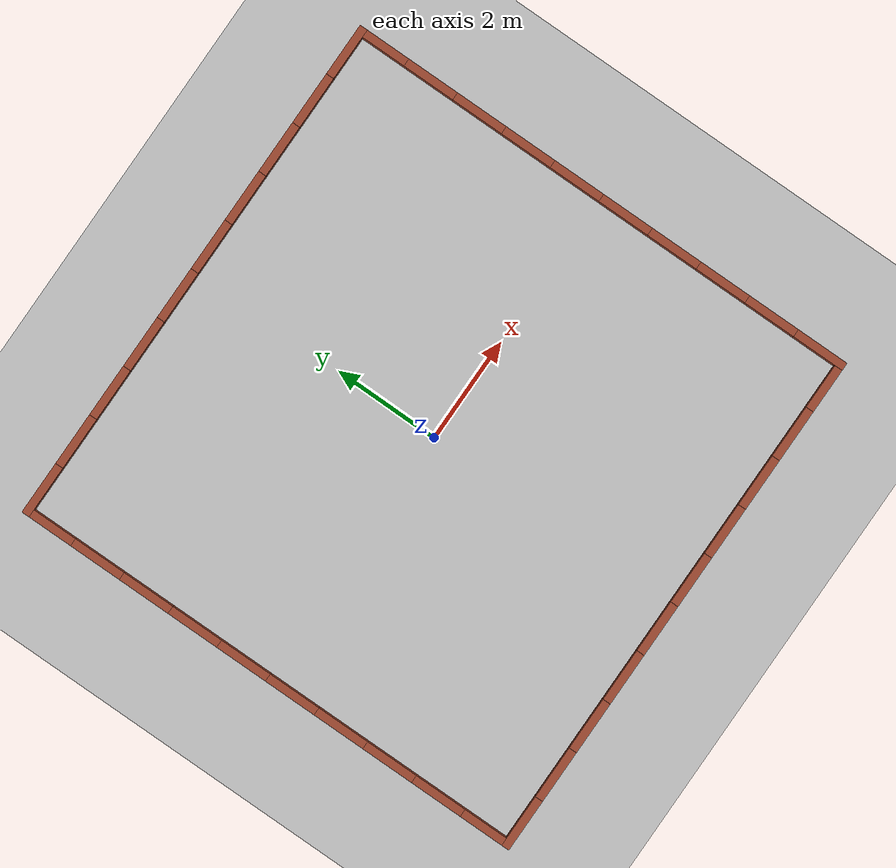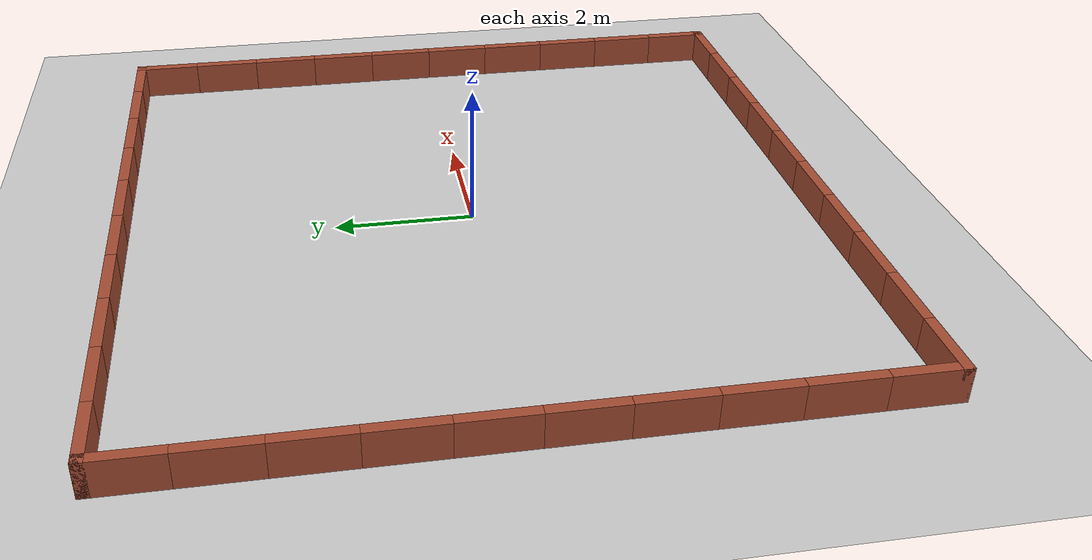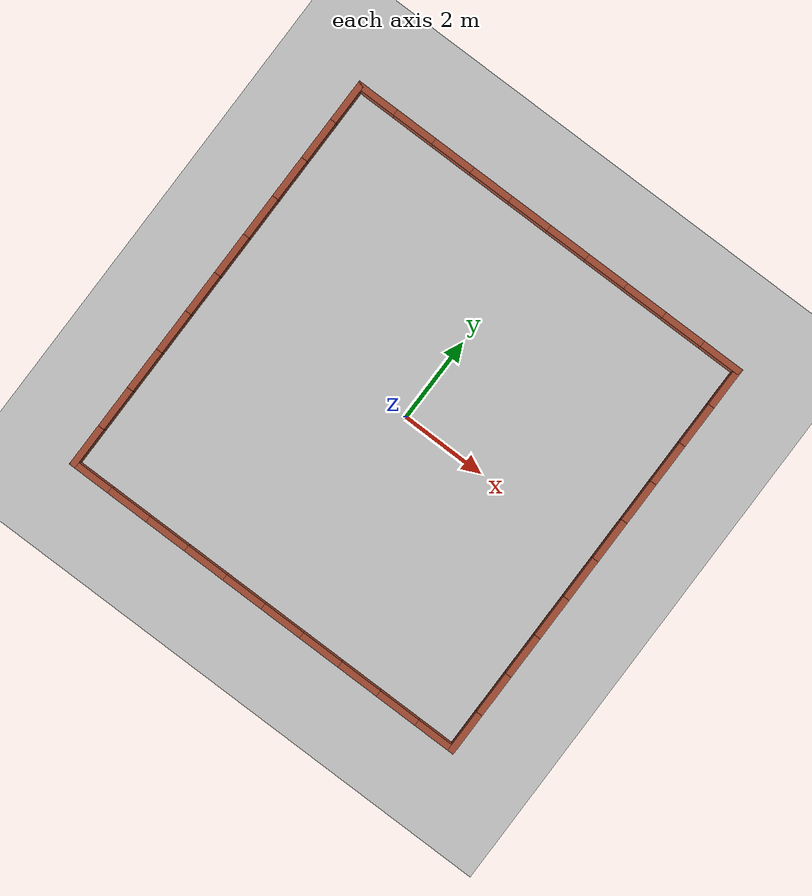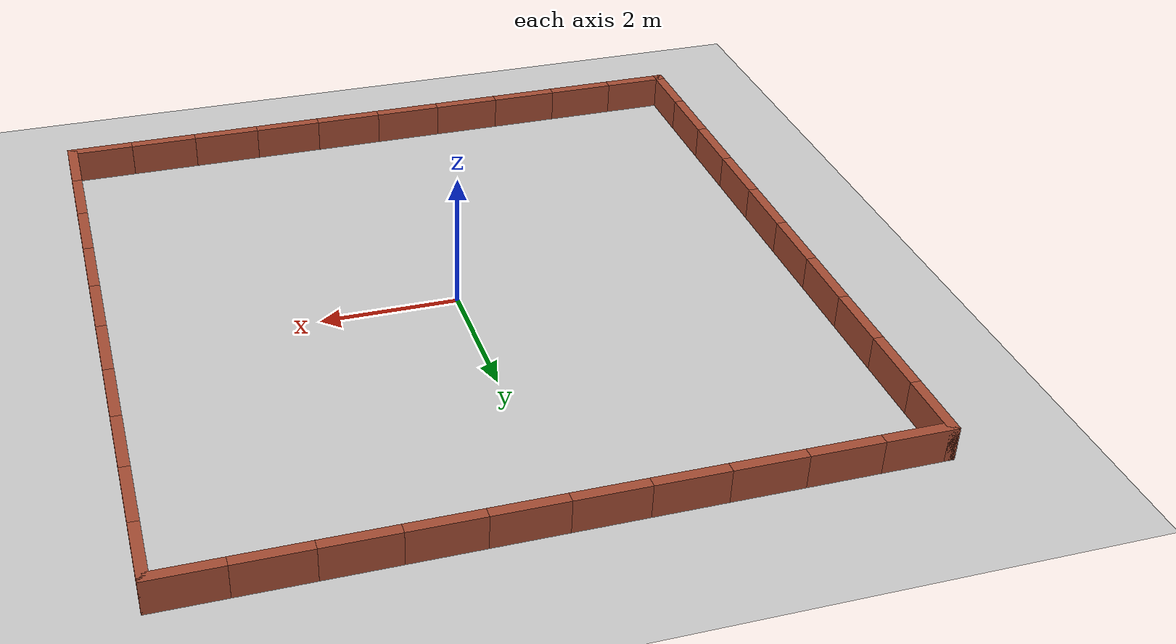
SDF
<?xml version="1.0" ?>
<sdf version="1.6">
  <world name="default">

    <include>
      <uri>model://sun</uri>
    </include>

    <include>
      <uri>model://ground_plane</uri>
    </include>

    <physics type="ode">
      <real_time_update_rate>1000.0</real_time_update_rate>
      <max_step_size>0.001</max_step_size>
      <real_time_factor>1</real_time_factor>
      <ode>
        <solver>
          <type>quick</type>
          <iters>150</iters>
          <precon_iters>0</precon_iters>
          <sor>1.400000</sor>
          <use_dynamic_moi_rescaling>1</use_dynamic_moi_rescaling>
        </solver>
        <constraints>
          <cfm>0.00001</cfm>
          <erp>0.2</erp>
          <contact_max_correcting_vel>2000.000000</contact_max_correcting_vel>
          <contact_surface_layer>0.01000</contact_surface_layer>
        </constraints>
      </ode>
    </physics>

    <scene>
      <ambient>0.4 0.4 0.4 1</ambient>
      <background>0.7 0.7 0.7 1</background>
      <shadows>true</shadows>
    </scene>

    <gui fullscreen="0">
      <camera name="user_camera">
        <pose>0 -9 7 0 0.6 1.5708</pose>
        <view_controller>orbit</view_controller>
      </camera>
    </gui>

    <!-- Square arena, walls built from ~1m segments so the brick texture
         tiles instead of stretching across one long face -->
    <model name="brick_walls">
      <static>true</static>
      <link name="wall_north_0">
        <pose>-4.5675 5.0000 0.2500 0 0 0</pose>
        <collision name="collision">
          <geometry><box><size>1.0150 0.15 0.5</size></box></geometry>
        </collision>
        <visual name="visual">
          <geometry><box><size>1.0150 0.15 0.5</size></box></geometry>
          <material>
            <script>
              <uri>file://media/materials/scripts/gazebo.material</uri>
              <name>Gazebo/Bricks</name>
            </script>
          </material>
        </visual>
      </link>
      <link name="wall_south_0">
        <pose>-4.5675 -5.0000 0.2500 0 0 0</pose>
        <collision name="collision">
          <geometry><box><size>1.0150 0.15 0.5</size></box></geometry>
        </collision>
        <visual name="visual">
          <geometry><box><size>1.0150 0.15 0.5</size></box></geometry>
          <material>
            <script>
              <uri>file://media/materials/scripts/gazebo.material</uri>
              <name>Gazebo/Bricks</name>
            </script>
          </material>
        </visual>
      </link>
      <link name="wall_east_0">
        <pose>5.0000 -4.5675 0.2500 0 0 0</pose>
        <collision name="collision">
          <geometry><box><size>0.15 1.0150 0.5</size></box></geometry>
        </collision>
        <visual name="visual">
          <geometry><box><size>0.15 1.0150 0.5</size></box></geometry>
          <material>
            <script>
              <uri>file://media/materials/scripts/gazebo.material</uri>
              <name>Gazebo/Bricks</name>
            </script>
          </material>
        </visual>
      </link>
      <link name="wall_west_0">
        <pose>-5.0000 -4.5675 0.2500 0 0 0</pose>
        <collision name="collision">
          <geometry><box><size>0.15 1.0150 0.5</size></box></geometry>
        </collision>
        <visual name="visual">
          <geometry><box><size>0.15 1.0150 0.5</size></box></geometry>
          <material>
            <script>
              <uri>file://media/materials/scripts/gazebo.material</uri>
              <name>Gazebo/Bricks</name>
            </script>
          </material>
        </visual>
      </link>
      <link name="wall_north_1">
        <pose>-3.5525 5.0000 0.2500 0 0 0</pose>
        <collision name="collision">
          <geometry><box><size>1.0150 0.15 0.5</size></box></geometry>
        </collision>
        <visual name="visual">
          <geometry><box><size>1.0150 0.15 0.5</size></box></geometry>
          <material>
            <script>
              <uri>file://media/materials/scripts/gazebo.material</uri>
              <name>Gazebo/Bricks</name>
            </script>
          </material>
        </visual>
      </link>
      <link name="wall_south_1">
        <pose>-3.5525 -5.0000 0.2500 0 0 0</pose>
        <collision name="collision">
          <geometry><box><size>1.0150 0.15 0.5</size></box></geometry>
        </collision>
        <visual name="visual">
          <geometry><box><size>1.0150 0.15 0.5</size></box></geometry>
          <material>
            <script>
              <uri>file://media/materials/scripts/gazebo.material</uri>
              <name>Gazebo/Bricks</name>
            </script>
          </material>
        </visual>
      </link>
      <link name="wall_east_1">
        <pose>5.0000 -3.5525 0.2500 0 0 0</pose>
        <collision name="collision">
          <geometry><box><size>0.15 1.0150 0.5</size></box></geometry>
        </collision>
        <visual name="visual">
          <geometry><box><size>0.15 1.0150 0.5</size></box></geometry>
          <material>
            <script>
              <uri>file://media/materials/scripts/gazebo.material</uri>
              <name>Gazebo/Bricks</name>
            </script>
          </material>
        </visual>
      </link>
      <link name="wall_west_1">
        <pose>-5.0000 -3.5525 0.2500 0 0 0</pose>
        <collision name="collision">
          <geometry><box><size>0.15 1.0150 0.5</size></box></geometry>
        </collision>
        <visual name="visual">
          <geometry><box><size>0.15 1.0150 0.5</size></box></geometry>
          <material>
            <script>
              <uri>file://media/materials/scripts/gazebo.material</uri>
              <name>Gazebo/Bricks</name>
            </script>
          </material>
        </visual>
      </link>
      <link name="wall_north_2">
        <pose>-2.5375 5.0000 0.2500 0 0 0</pose>
        <collision name="collision">
          <geometry><box><size>1.0150 0.15 0.5</size></box></geometry>
        </collision>
        <visual name="visual">
          <geometry><box><size>1.0150 0.15 0.5</size></box></geometry>
          <material>
            <script>
              <uri>file://media/materials/scripts/gazebo.material</uri>
              <name>Gazebo/Bricks</name>
            </script>
          </material>
        </visual>
      </link>
      <link name="wall_south_2">
        <pose>-2.5375 -5.0000 0.2500 0 0 0</pose>
        <collision name="collision">
          <geometry><box><size>1.0150 0.15 0.5</size></box></geometry>
        </collision>
        <visual name="visual">
          <geometry><box><size>1.0150 0.15 0.5</size></box></geometry>
          <material>
            <script>
              <uri>file://media/materials/scripts/gazebo.material</uri>
              <name>Gazebo/Bricks</name>
            </script>
          </material>
        </visual>
      </link>
      <link name="wall_east_2">
        <pose>5.0000 -2.5375 0.2500 0 0 0</pose>
        <collision name="collision">
          <geometry><box><size>0.15 1.0150 0.5</size></box></geometry>
        </collision>
        <visual name="visual">
          <geometry><box><size>0.15 1.0150 0.5</size></box></geometry>
          <material>
            <script>
              <uri>file://media/materials/scripts/gazebo.material</uri>
              <name>Gazebo/Bricks</name>
            </script>
          </material>
        </visual>
      </link>
      <link name="wall_west_2">
        <pose>-5.0000 -2.5375 0.2500 0 0 0</pose>
        <collision name="collision">
          <geometry><box><size>0.15 1.0150 0.5</size></box></geometry>
        </collision>
        <visual name="visual">
          <geometry><box><size>0.15 1.0150 0.5</size></box></geometry>
          <material>
            <script>
              <uri>file://media/materials/scripts/gazebo.material</uri>
              <name>Gazebo/Bricks</name>
            </script>
          </material>
        </visual>
      </link>
      <link name="wall_north_3">
        <pose>-1.5225 5.0000 0.2500 0 0 0</pose>
        <collision name="collision">
          <geometry><box><size>1.0150 0.15 0.5</size></box></geometry>
        </collision>
        <visual name="visual">
          <geometry><box><size>1.0150 0.15 0.5</size></box></geometry>
          <material>
            <script>
              <uri>file://media/materials/scripts/gazebo.material</uri>
              <name>Gazebo/Bricks</name>
            </script>
          </material>
        </visual>
      </link>
      <link name="wall_south_3">
        <pose>-1.5225 -5.0000 0.2500 0 0 0</pose>
        <collision name="collision">
          <geometry><box><size>1.0150 0.15 0.5</size></box></geometry>
        </collision>
        <visual name="visual">
          <geometry><box><size>1.0150 0.15 0.5</size></box></geometry>
          <material>
            <script>
              <uri>file://media/materials/scripts/gazebo.material</uri>
              <name>Gazebo/Bricks</name>
            </script>
          </material>
        </visual>
      </link>
      <link name="wall_east_3">
        <pose>5.0000 -1.5225 0.2500 0 0 0</pose>
        <collision name="collision">
          <geometry><box><size>0.15 1.0150 0.5</size></box></geometry>
        </collision>
        <visual name="visual">
          <geometry><box><size>0.15 1.0150 0.5</size></box></geometry>
          <material>
            <script>
              <uri>file://media/materials/scripts/gazebo.material</uri>
              <name>Gazebo/Bricks</name>
            </script>
          </material>
        </visual>
      </link>
      <link name="wall_west_3">
        <pose>-5.0000 -1.5225 0.2500 0 0 0</pose>
        <collision name="collision">
          <geometry><box><size>0.15 1.0150 0.5</size></box></geometry>
        </collision>
        <visual name="visual">
          <geometry><box><size>0.15 1.0150 0.5</size></box></geometry>
          <material>
            <script>
              <uri>file://media/materials/scripts/gazebo.material</uri>
              <name>Gazebo/Bricks</name>
            </script>
          </material>
        </visual>
      </link>
      <link name="wall_north_4">
        <pose>-0.5075 5.0000 0.2500 0 0 0</pose>
        <collision name="collision">
          <geometry><box><size>1.0150 0.15 0.5</size></box></geometry>
        </collision>
        <visual name="visual">
          <geometry><box><size>1.0150 0.15 0.5</size></box></geometry>
          <material>
            <script>
              <uri>file://media/materials/scripts/gazebo.material</uri>
              <name>Gazebo/Bricks</name>
            </script>
          </material>
        </visual>
      </link>
      <link name="wall_south_4">
        <pose>-0.5075 -5.0000 0.2500 0 0 0</pose>
        <collision name="collision">
          <geometry><box><size>1.0150 0.15 0.5</size></box></geometry>
        </collision>
        <visual name="visual">
          <geometry><box><size>1.0150 0.15 0.5</size></box></geometry>
          <material>
            <script>
              <uri>file://media/materials/scripts/gazebo.material</uri>
              <name>Gazebo/Bricks</name>
            </script>
          </material>
        </visual>
      </link>
      <link name="wall_east_4">
        <pose>5.0000 -0.5075 0.2500 0 0 0</pose>
        <collision name="collision">
          <geometry><box><size>0.15 1.0150 0.5</size></box></geometry>
        </collision>
        <visual name="visual">
          <geometry><box><size>0.15 1.0150 0.5</size></box></geometry>
          <material>
            <script>
              <uri>file://media/materials/scripts/gazebo.material</uri>
              <name>Gazebo/Bricks</name>
            </script>
          </material>
        </visual>
      </link>
      <link name="wall_west_4">
        <pose>-5.0000 -0.5075 0.2500 0 0 0</pose>
        <collision name="collision">
          <geometry><box><size>0.15 1.0150 0.5</size></box></geometry>
        </collision>
        <visual name="visual">
          <geometry><box><size>0.15 1.0150 0.5</size></box></geometry>
          <material>
            <script>
              <uri>file://media/materials/scripts/gazebo.material</uri>
              <name>Gazebo/Bricks</name>
            </script>
          </material>
        </visual>
      </link>
      <link name="wall_north_5">
        <pose>0.5075 5.0000 0.2500 0 0 0</pose>
        <collision name="collision">
          <geometry><box><size>1.0150 0.15 0.5</size></box></geometry>
        </collision>
        <visual name="visual">
          <geometry><box><size>1.0150 0.15 0.5</size></box></geometry>
          <material>
            <script>
              <uri>file://media/materials/scripts/gazebo.material</uri>
              <name>Gazebo/Bricks</name>
            </script>
          </material>
        </visual>
      </link>
      <link name="wall_south_5">
        <pose>0.5075 -5.0000 0.2500 0 0 0</pose>
        <collision name="collision">
          <geometry><box><size>1.0150 0.15 0.5</size></box></geometry>
        </collision>
        <visual name="visual">
          <geometry><box><size>1.0150 0.15 0.5</size></box></geometry>
          <material>
            <script>
              <uri>file://media/materials/scripts/gazebo.material</uri>
              <name>Gazebo/Bricks</name>
            </script>
          </material>
        </visual>
      </link>
      <link name="wall_east_5">
        <pose>5.0000 0.5075 0.2500 0 0 0</pose>
        <collision name="collision">
          <geometry><box><size>0.15 1.0150 0.5</size></box></geometry>
        </collision>
        <visual name="visual">
          <geometry><box><size>0.15 1.0150 0.5</size></box></geometry>
          <material>
            <script>
              <uri>file://media/materials/scripts/gazebo.material</uri>
              <name>Gazebo/Bricks</name>
            </script>
          </material>
        </visual>
      </link>
      <link name="wall_west_5">
        <pose>-5.0000 0.5075 0.2500 0 0 0</pose>
        <collision name="collision">
          <geometry><box><size>0.15 1.0150 0.5</size></box></geometry>
        </collision>
        <visual name="visual">
          <geometry><box><size>0.15 1.0150 0.5</size></box></geometry>
          <material>
            <script>
              <uri>file://media/materials/scripts/gazebo.material</uri>
              <name>Gazebo/Bricks</name>
            </script>
          </material>
        </visual>
      </link>
      <link name="wall_north_6">
        <pose>1.5225 5.0000 0.2500 0 0 0</pose>
        <collision name="collision">
          <geometry><box><size>1.0150 0.15 0.5</size></box></geometry>
        </collision>
        <visual name="visual">
          <geometry><box><size>1.0150 0.15 0.5</size></box></geometry>
          <material>
            <script>
              <uri>file://media/materials/scripts/gazebo.material</uri>
              <name>Gazebo/Bricks</name>
            </script>
          </material>
        </visual>
      </link>
      <link name="wall_south_6">
        <pose>1.5225 -5.0000 0.2500 0 0 0</pose>
        <collision name="collision">
          <geometry><box><size>1.0150 0.15 0.5</size></box></geometry>
        </collision>
        <visual name="visual">
          <geometry><box><size>1.0150 0.15 0.5</size></box></geometry>
          <material>
            <script>
              <uri>file://media/materials/scripts/gazebo.material</uri>
              <name>Gazebo/Bricks</name>
            </script>
          </material>
        </visual>
      </link>
      <link name="wall_east_6">
        <pose>5.0000 1.5225 0.2500 0 0 0</pose>
        <collision name="collision">
          <geometry><box><size>0.15 1.0150 0.5</size></box></geometry>
        </collision>
        <visual name="visual">
          <geometry><box><size>0.15 1.0150 0.5</size></box></geometry>
          <material>
            <script>
              <uri>file://media/materials/scripts/gazebo.material</uri>
              <name>Gazebo/Bricks</name>
            </script>
          </material>
        </visual>
      </link>
      <link name="wall_west_6">
        <pose>-5.0000 1.5225 0.2500 0 0 0</pose>
        <collision name="collision">
          <geometry><box><size>0.15 1.0150 0.5</size></box></geometry>
        </collision>
        <visual name="visual">
          <geometry><box><size>0.15 1.0150 0.5</size></box></geometry>
          <material>
            <script>
              <uri>file://media/materials/scripts/gazebo.material</uri>
              <name>Gazebo/Bricks</name>
            </script>
          </material>
        </visual>
      </link>
      <link name="wall_north_7">
        <pose>2.5375 5.0000 0.2500 0 0 0</pose>
        <collision name="collision">
          <geometry><box><size>1.0150 0.15 0.5</size></box></geometry>
        </collision>
        <visual name="visual">
          <geometry><box><size>1.0150 0.15 0.5</size></box></geometry>
          <material>
            <script>
              <uri>file://media/materials/scripts/gazebo.material</uri>
              <name>Gazebo/Bricks</name>
            </script>
          </material>
        </visual>
      </link>
      <link name="wall_south_7">
        <pose>2.5375 -5.0000 0.2500 0 0 0</pose>
        <collision name="collision">
          <geometry><box><size>1.0150 0.15 0.5</size></box></geometry>
        </collision>
        <visual name="visual">
          <geometry><box><size>1.0150 0.15 0.5</size></box></geometry>
          <material>
            <script>
              <uri>file://media/materials/scripts/gazebo.material</uri>
              <name>Gazebo/Bricks</name>
            </script>
          </material>
        </visual>
      </link>
      <link name="wall_east_7">
        <pose>5.0000 2.5375 0.2500 0 0 0</pose>
        <collision name="collision">
          <geometry><box><size>0.15 1.0150 0.5</size></box></geometry>
        </collision>
        <visual name="visual">
          <geometry><box><size>0.15 1.0150 0.5</size></box></geometry>
          <material>
            <script>
              <uri>file://media/materials/scripts/gazebo.material</uri>
              <name>Gazebo/Bricks</name>
            </script>
          </material>
        </visual>
      </link>
      <link name="wall_west_7">
        <pose>-5.0000 2.5375 0.2500 0 0 0</pose>
        <collision name="collision">
          <geometry><box><size>0.15 1.0150 0.5</size></box></geometry>
        </collision>
        <visual name="visual">
          <geometry><box><size>0.15 1.0150 0.5</size></box></geometry>
          <material>
            <script>
              <uri>file://media/materials/scripts/gazebo.material</uri>
              <name>Gazebo/Bricks</name>
            </script>
          </material>
        </visual>
      </link>
      <link name="wall_north_8">
        <pose>3.5525 5.0000 0.2500 0 0 0</pose>
        <collision name="collision">
          <geometry><box><size>1.0150 0.15 0.5</size></box></geometry>
        </collision>
        <visual name="visual">
          <geometry><box><size>1.0150 0.15 0.5</size></box></geometry>
          <material>
            <script>
              <uri>file://media/materials/scripts/gazebo.material</uri>
              <name>Gazebo/Bricks</name>
            </script>
          </material>
        </visual>
      </link>
      <link name="wall_south_8">
        <pose>3.5525 -5.0000 0.2500 0 0 0</pose>
        <collision name="collision">
          <geometry><box><size>1.0150 0.15 0.5</size></box></geometry>
        </collision>
        <visual name="visual">
          <geometry><box><size>1.0150 0.15 0.5</size></box></geometry>
          <material>
            <script>
              <uri>file://media/materials/scripts/gazebo.material</uri>
              <name>Gazebo/Bricks</name>
            </script>
          </material>
        </visual>
      </link>
      <link name="wall_east_8">
        <pose>5.0000 3.5525 0.2500 0 0 0</pose>
        <collision name="collision">
          <geometry><box><size>0.15 1.0150 0.5</size></box></geometry>
        </collision>
        <visual name="visual">
          <geometry><box><size>0.15 1.0150 0.5</size></box></geometry>
          <material>
            <script>
              <uri>file://media/materials/scripts/gazebo.material</uri>
              <name>Gazebo/Bricks</name>
            </script>
          </material>
        </visual>
      </link>
      <link name="wall_west_8">
        <pose>-5.0000 3.5525 0.2500 0 0 0</pose>
        <collision name="collision">
          <geometry><box><size>0.15 1.0150 0.5</size></box></geometry>
        </collision>
        <visual name="visual">
          <geometry><box><size>0.15 1.0150 0.5</size></box></geometry>
          <material>
            <script>
              <uri>file://media/materials/scripts/gazebo.material</uri>
              <name>Gazebo/Bricks</name>
            </script>
          </material>
        </visual>
      </link>
      <link name="wall_north_9">
        <pose>4.5675 5.0000 0.2500 0 0 0</pose>
        <collision name="collision">
          <geometry><box><size>1.0150 0.15 0.5</size></box></geometry>
        </collision>
        <visual name="visual">
          <geometry><box><size>1.0150 0.15 0.5</size></box></geometry>
          <material>
            <script>
              <uri>file://media/materials/scripts/gazebo.material</uri>
              <name>Gazebo/Bricks</name>
            </script>
          </material>
        </visual>
      </link>
      <link name="wall_south_9">
        <pose>4.5675 -5.0000 0.2500 0 0 0</pose>
        <collision name="collision">
          <geometry><box><size>1.0150 0.15 0.5</size></box></geometry>
        </collision>
        <visual name="visual">
          <geometry><box><size>1.0150 0.15 0.5</size></box></geometry>
          <material>
            <script>
              <uri>file://media/materials/scripts/gazebo.material</uri>
              <name>Gazebo/Bricks</name>
            </script>
          </material>
        </visual>
      </link>
      <link name="wall_east_9">
        <pose>5.0000 4.5675 0.2500 0 0 0</pose>
        <collision name="collision">
          <geometry><box><size>0.15 1.0150 0.5</size></box></geometry>
        </collision>
        <visual name="visual">
          <geometry><box><size>0.15 1.0150 0.5</size></box></geometry>
          <material>
            <script>
              <uri>file://media/materials/scripts/gazebo.material</uri>
              <name>Gazebo/Bricks</name>
            </script>
          </material>
        </visual>
      </link>
      <link name="wall_west_9">
        <pose>-5.0000 4.5675 0.2500 0 0 0</pose>
        <collision name="collision">
          <geometry><box><size>0.15 1.0150 0.5</size></box></geometry>
        </collision>
        <visual name="visual">
          <geometry><box><size>0.15 1.0150 0.5</size></box></geometry>
          <material>
            <script>
              <uri>file://media/materials/scripts/gazebo.material</uri>
              <name>Gazebo/Bricks</name>
            </script>
          </material>
        </visual>
      </link>
    </model>

  </world>
</sdf>
